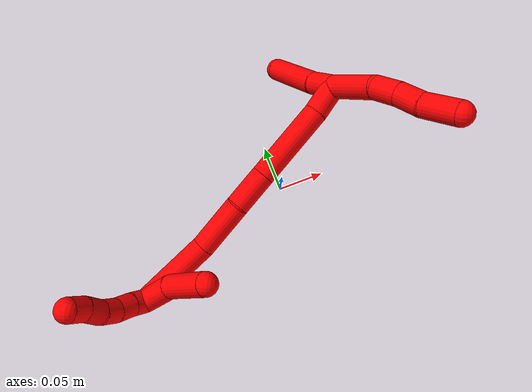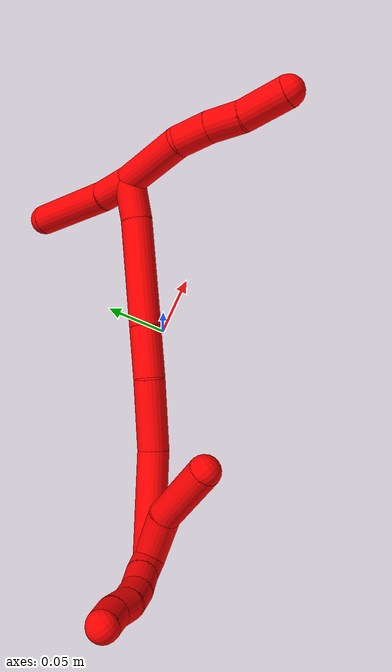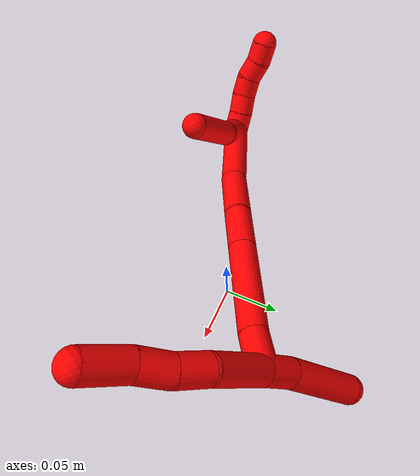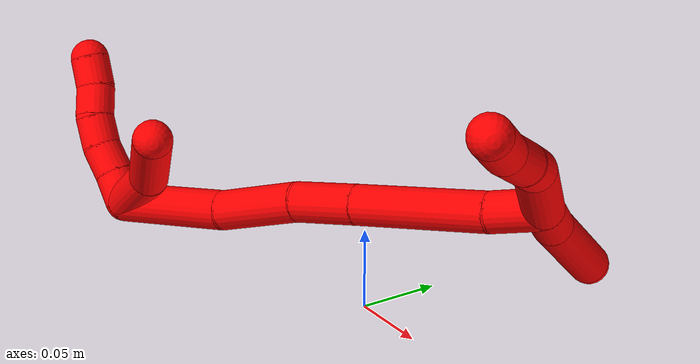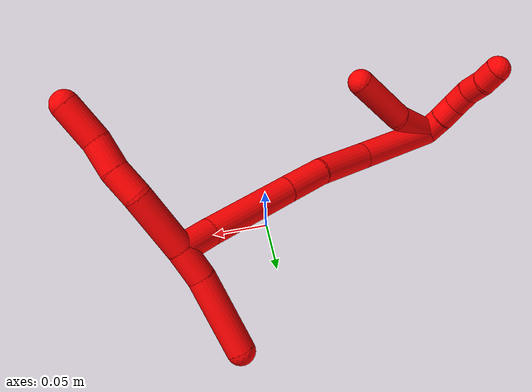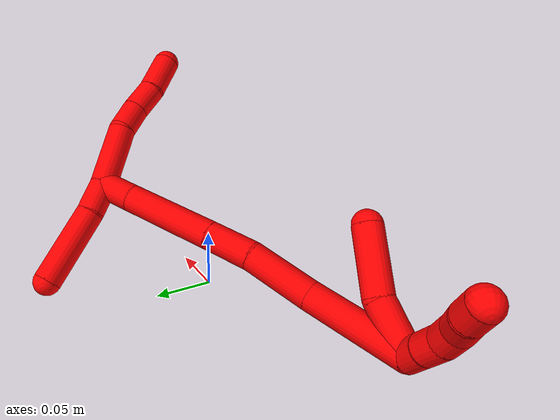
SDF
<sdf version="1.7">
 <world name="default">
  <model name="2">
   <static>0</static>
   <link name="2">
    <collision name="collision-cylinder-e_1_2_8">
     <pose>-0.016965 0.006654 0.021828 -0.295906 -0.639267 0.098581</pose>
     <geometry><cylinder><radius>0.0125</radius><length>0.05687</length></cylinder></geometry>
     <surface>
      <friction><ode><mu>1.16</mu><mu2>1.16</mu2><slip1>0</slip1><slip2>0</slip2></ode></friction>
      <contact><ode><kp>1e+06</kp><kd>1</kd><max_vel>0</max_vel><min_depth>0.001</min_depth></ode></contact>
     </surface>
    </collision>
    <visual name="visual-cylinder-e_1_2_8">
     <pose>-0.016965 0.006654 0.021828 -0.295906 -0.639267 0.098581</pose>
     <geometry><cylinder><radius>0.0125</radius><length>0.05687</length></cylinder></geometry>
     <material><ambient>1 0 0 1</ambient></material>
    </visual>
    <collision name="collision-cylinder-e_2_8_9">
     <pose>-0.040726 0.012899 0.055475 0.034658 -0.521661 -0.009252</pose>
     <geometry><cylinder><radius>0.0125</radius><length>0.02728</length></cylinder></geometry>
     <surface>
      <friction><ode><mu>1.16</mu><mu2>1.16</mu2><slip1>0</slip1><slip2>0</slip2></ode></friction>
      <contact><ode><kp>1e+06</kp><kd>1</kd><max_vel>0</max_vel><min_depth>0.001</min_depth></ode></contact>
     </surface>
    </collision>
    <visual name="visual-cylinder-e_2_8_9">
     <pose>-0.040726 0.012899 0.055475 0.034658 -0.521661 -0.009252</pose>
     <geometry><cylinder><radius>0.0125</radius><length>0.02728</length></cylinder></geometry>
     <material><ambient>1 0 0 1</ambient></material>
    </visual>
    <collision name="collision-cylinder-e_3_9_10">
     <pose>-0.05645 0.011136 0.078158 0.123935 -0.684039 -0.044172</pose>
     <geometry><cylinder><radius>0.0125</radius><length>0.028253</length></cylinder></geometry>
     <surface>
      <friction><ode><mu>1.16</mu><mu2>1.16</mu2><slip1>0</slip1><slip2>0</slip2></ode></friction>
      <contact><ode><kp>1e+06</kp><kd>1</kd><max_vel>0</max_vel><min_depth>0.001</min_depth></ode></contact>
     </surface>
    </collision>
    <visual name="visual-cylinder-e_3_9_10">
     <pose>-0.05645 0.011136 0.078158 0.123935 -0.684039 -0.044172</pose>
     <geometry><cylinder><radius>0.0125</radius><length>0.028253</length></cylinder></geometry>
     <material><ambient>1 0 0 1</ambient></material>
    </visual>
    <collision name="collision-cylinder-e_4_10_6">
     <pose>-0.075394 0.010668 0.104906 -0.055662 -0.561935 0.016068</pose>
     <geometry><cylinder><radius>0.0125</radius><length>0.037597</length></cylinder></geometry>
     <surface>
      <friction><ode><mu>1.16</mu><mu2>1.16</mu2><slip1>0</slip1><slip2>0</slip2></ode></friction>
      <contact><ode><kp>1e+06</kp><kd>1</kd><max_vel>0</max_vel><min_depth>0.001</min_depth></ode></contact>
     </surface>
    </collision>
    <visual name="visual-cylinder-e_4_10_6">
     <pose>-0.075394 0.010668 0.104906 -0.055662 -0.561935 0.016068</pose>
     <geometry><cylinder><radius>0.0125</radius><length>0.037597</length></cylinder></geometry>
     <material><ambient>1 0 0 1</ambient></material>
    </visual>
    <collision name="collision-cylinder-e_1_2_11">
     <pose>0.009138 -0.001746 -0.011289 2.98811 0.674713 2.70998</pose>
     <geometry><cylinder><radius>0.0125</radius><length>0.029257</length></cylinder></geometry>
     <surface>
      <friction><ode><mu>1.16</mu><mu2>1.16</mu2><slip1>0</slip1><slip2>0</slip2></ode></friction>
      <contact><ode><kp>1e+06</kp><kd>1</kd><max_vel>0</max_vel><min_depth>0.001</min_depth></ode></contact>
     </surface>
    </collision>
    <visual name="visual-cylinder-e_1_2_11">
     <pose>0.009138 -0.001746 -0.011289 2.98811 0.674713 2.70998</pose>
     <geometry><cylinder><radius>0.0125</radius><length>0.029257</length></cylinder></geometry>
     <material><ambient>1 0 0 1</ambient></material>
    </visual>
    <collision name="collision-cylinder-e_2_11_5">
     <pose>0.043389 -0.004758 -0.047456 3.0908 0.789444 3.01979</pose>
     <geometry><cylinder><radius>0.0125</radius><length>0.070743</length></cylinder></geometry>
     <surface>
      <friction><ode><mu>1.16</mu><mu2>1.16</mu2><slip1>0</slip1><slip2>0</slip2></ode></friction>
      <contact><ode><kp>1e+06</kp><kd>1</kd><max_vel>0</max_vel><min_depth>0.001</min_depth></ode></contact>
     </surface>
    </collision>
    <visual name="visual-cylinder-e_2_11_5">
     <pose>0.043389 -0.004758 -0.047456 3.0908 0.789444 3.01979</pose>
     <geometry><cylinder><radius>0.0125</radius><length>0.070743</length></cylinder></geometry>
     <material><ambient>1 0 0 1</ambient></material>
    </visual>
    <collision name="collision-cylinder-e_1_2_12">
     <pose>-0.007679 -0.012219 -0.007585 2.12633 -0.49042 -0.845506</pose>
     <geometry><cylinder><radius>0.0125</radius><length>0.032607</length></cylinder></geometry>
     <surface>
      <friction><ode><mu>1.16</mu><mu2>1.16</mu2><slip1>0</slip1><slip2>0</slip2></ode></friction>
      <contact><ode><kp>1e+06</kp><kd>1</kd><max_vel>0</max_vel><min_depth>0.001</min_depth></ode></contact>
     </surface>
    </collision>
    <visual name="visual-cylinder-e_1_2_12">
     <pose>-0.007679 -0.012219 -0.007585 2.12633 -0.49042 -0.845506</pose>
     <geometry><cylinder><radius>0.0125</radius><length>0.032607</length></cylinder></geometry>
     <material><ambient>1 0 0 1</ambient></material>
    </visual>
    <collision name="collision-cylinder-e_2_12_13">
     <pose>-0.037406 -0.053347 -0.038478 2.24935 -0.535812 -1.04207</pose>
     <geometry><cylinder><radius>0.0125</radius><length>0.086373</length></cylinder></geometry>
     <surface>
      <friction><ode><mu>1.16</mu><mu2>1.16</mu2><slip1>0</slip1><slip2>0</slip2></ode></friction>
      <contact><ode><kp>1e+06</kp><kd>1</kd><max_vel>0</max_vel><min_depth>0.001</min_depth></ode></contact>
     </surface>
    </collision>
    <visual name="visual-cylinder-e_2_12_13">
     <pose>-0.037406 -0.053347 -0.038478 2.24935 -0.535812 -1.04207</pose>
     <geometry><cylinder><radius>0.0125</radius><length>0.086373</length></cylinder></geometry>
     <material><ambient>1 0 0 1</ambient></material>
    </visual>
    <collision name="collision-cylinder-e_3_13_14">
     <pose>-0.06986 -0.096192 -0.072984 2.24768 -0.527067 -1.02541</pose>
     <geometry><cylinder><radius>0.0125</radius><length>0.041371</length></cylinder></geometry>
     <surface>
      <friction><ode><mu>1.16</mu><mu2>1.16</mu2><slip1>0</slip1><slip2>0</slip2></ode></friction>
      <contact><ode><kp>1e+06</kp><kd>1</kd><max_vel>0</max_vel><min_depth>0.001</min_depth></ode></contact>
     </surface>
    </collision>
    <visual name="visual-cylinder-e_3_13_14">
     <pose>-0.06986 -0.096192 -0.072984 2.24768 -0.527067 -1.02541</pose>
     <geometry><cylinder><radius>0.0125</radius><length>0.041371</length></cylinder></geometry>
     <material><ambient>1 0 0 1</ambient></material>
    </visual>
    <collision name="collision-cylinder-e_4_14_15">
     <pose>-0.090529 -0.130983 -0.100053 2.22129 -0.373304 -0.728086</pose>
     <geometry><cylinder><radius>0.0125</radius><length>0.056291</length></cylinder></geometry>
     <surface>
      <friction><ode><mu>1.16</mu><mu2>1.16</mu2><slip1>0</slip1><slip2>0</slip2></ode></friction>
      <contact><ode><kp>1e+06</kp><kd>1</kd><max_vel>0</max_vel><min_depth>0.001</min_depth></ode></contact>
     </surface>
    </collision>
    <visual name="visual-cylinder-e_4_14_15">
     <pose>-0.090529 -0.130983 -0.100053 2.22129 -0.373304 -0.728086</pose>
     <geometry><cylinder><radius>0.0125</radius><length>0.056291</length></cylinder></geometry>
     <material><ambient>1 0 0 1</ambient></material>
    </visual>
    <collision name="collision-cylinder-e_5_15_1">
     <pose>-0.119508 -0.177815 -0.142609 2.36966 -0.465664 -1.0565</pose>
     <geometry><cylinder><radius>0.0125</radius><length>0.083358</length></cylinder></geometry>
     <surface>
      <friction><ode><mu>1.16</mu><mu2>1.16</mu2><slip1>0</slip1><slip2>0</slip2></ode></friction>
      <contact><ode><kp>1e+06</kp><kd>1</kd><max_vel>0</max_vel><min_depth>0.001</min_depth></ode></contact>
     </surface>
    </collision>
    <visual name="visual-cylinder-e_5_15_1">
     <pose>-0.119508 -0.177815 -0.142609 2.36966 -0.465664 -1.0565</pose>
     <geometry><cylinder><radius>0.0125</radius><length>0.083358</length></cylinder></geometry>
     <material><ambient>1 0 0 1</ambient></material>
    </visual>
    <collision name="collision-cylinder-e_1_1_16">
     <pose>-0.141366 -0.189537 -0.153377 -0.730325 -0.146063 0.055926</pose>
     <geometry><cylinder><radius>0.0125</radius><length>0.043193</length></cylinder></geometry>
     <surface>
      <friction><ode><mu>1.16</mu><mu2>1.16</mu2><slip1>0</slip1><slip2>0</slip2></ode></friction>
      <contact><ode><kp>1e+06</kp><kd>1</kd><max_vel>0</max_vel><min_depth>0.001</min_depth></ode></contact>
     </surface>
    </collision>
    <visual name="visual-cylinder-e_1_1_16">
     <pose>-0.141366 -0.189537 -0.153377 -0.730325 -0.146063 0.055926</pose>
     <geometry><cylinder><radius>0.0125</radius><length>0.043193</length></cylinder></geometry>
     <material><ambient>1 0 0 1</ambient></material>
    </visual>
    <collision name="collision-cylinder-e_2_16_4">
     <pose>-0.155718 -0.16196 -0.115019 -0.535794 -0.405681 0.112791</pose>
     <geometry><cylinder><radius>0.0125</radius><length>0.056807</length></cylinder></geometry>
     <surface>
      <friction><ode><mu>1.16</mu><mu2>1.16</mu2><slip1>0</slip1><slip2>0</slip2></ode></friction>
      <contact><ode><kp>1e+06</kp><kd>1</kd><max_vel>0</max_vel><min_depth>0.001</min_depth></ode></contact>
     </surface>
    </collision>
    <visual name="visual-cylinder-e_2_16_4">
     <pose>-0.155718 -0.16196 -0.115019 -0.535794 -0.405681 0.112791</pose>
     <geometry><cylinder><radius>0.0125</radius><length>0.056807</length></cylinder></geometry>
     <material><ambient>1 0 0 1</ambient></material>
    </visual>
    <collision name="collision-cylinder-e_1_1_17">
     <pose>-0.14662 -0.200657 -0.173727 -2.52609 -0.996852 2.08445</pose>
     <geometry><cylinder><radius>0.0125</radius><length>0.02</length></cylinder></geometry>
     <surface>
      <friction><ode><mu>1.16</mu><mu2>1.16</mu2><slip1>0</slip1><slip2>0</slip2></ode></friction>
      <contact><ode><kp>1e+06</kp><kd>1</kd><max_vel>0</max_vel><min_depth>0.001</min_depth></ode></contact>
     </surface>
    </collision>
    <visual name="visual-cylinder-e_1_1_17">
     <pose>-0.14662 -0.200657 -0.173727 -2.52609 -0.996852 2.08445</pose>
     <geometry><cylinder><radius>0.0125</radius><length>0.02</length></cylinder></geometry>
     <material><ambient>1 0 0 1</ambient></material>
    </visual>
    <collision name="collision-cylinder-e_2_17_18">
     <pose>-0.163829 -0.195002 -0.182161 -2.57953 -1.07829 2.24248</pose>
     <geometry><cylinder><radius>0.0125</radius><length>0.02</length></cylinder></geometry>
     <surface>
      <friction><ode><mu>1.16</mu><mu2>1.16</mu2><slip1>0</slip1><slip2>0</slip2></ode></friction>
      <contact><ode><kp>1e+06</kp><kd>1</kd><max_vel>0</max_vel><min_depth>0.001</min_depth></ode></contact>
     </surface>
    </collision>
    <visual name="visual-cylinder-e_2_17_18">
     <pose>-0.163829 -0.195002 -0.182161 -2.57953 -1.07829 2.24248</pose>
     <geometry><cylinder><radius>0.0125</radius><length>0.02</length></cylinder></geometry>
     <material><ambient>1 0 0 1</ambient></material>
    </visual>
    <collision name="collision-cylinder-e_3_18_19">
     <pose>-0.180787 -0.187925 -0.189751 -2.23786 -0.952056 1.63115</pose>
     <geometry><cylinder><radius>0.0125</radius><length>0.02</length></cylinder></geometry>
     <surface>
      <friction><ode><mu>1.16</mu><mu2>1.16</mu2><slip1>0</slip1><slip2>0</slip2></ode></friction>
      <contact><ode><kp>1e+06</kp><kd>1</kd><max_vel>0</max_vel><min_depth>0.001</min_depth></ode></contact>
     </surface>
    </collision>
    <visual name="visual-cylinder-e_3_18_19">
     <pose>-0.180787 -0.187925 -0.189751 -2.23786 -0.952056 1.63115</pose>
     <geometry><cylinder><radius>0.0125</radius><length>0.02</length></cylinder></geometry>
     <material><ambient>1 0 0 1</ambient></material>
    </visual>
    <collision name="collision-cylinder-e_4_19_20">
     <pose>-0.195276 -0.177116 -0.197887 -2.19963 -0.687046 1.22478</pose>
     <geometry><cylinder><radius>0.0125</radius><length>0.02</length></cylinder></geometry>
     <surface>
      <friction><ode><mu>1.16</mu><mu2>1.16</mu2><slip1>0</slip1><slip2>0</slip2></ode></friction>
      <contact><ode><kp>1e+06</kp><kd>1</kd><max_vel>0</max_vel><min_depth>0.001</min_depth></ode></contact>
     </surface>
    </collision>
    <visual name="visual-cylinder-e_4_19_20">
     <pose>-0.195276 -0.177116 -0.197887 -2.19963 -0.687046 1.22478</pose>
     <geometry><cylinder><radius>0.0125</radius><length>0.02</length></cylinder></geometry>
     <material><ambient>1 0 0 1</ambient></material>
    </visual>
    <collision name="collision-cylinder-e_5_20_3">
     <pose>-0.209574 -0.166028 -0.206084 -2.21739 -0.919978 1.5655</pose>
     <geometry><cylinder><radius>0.0125</radius><length>0.02</length></cylinder></geometry>
     <surface>
      <friction><ode><mu>1.16</mu><mu2>1.16</mu2><slip1>0</slip1><slip2>0</slip2></ode></friction>
      <contact><ode><kp>1e+06</kp><kd>1</kd><max_vel>0</max_vel><min_depth>0.001</min_depth></ode></contact>
     </surface>
    </collision>
    <visual name="visual-cylinder-e_5_20_3">
     <pose>-0.209574 -0.166028 -0.206084 -2.21739 -0.919978 1.5655</pose>
     <geometry><cylinder><radius>0.0125</radius><length>0.02</length></cylinder></geometry>
     <material><ambient>1 0 0 1</ambient></material>
    </visual>
    <collision name="collision-sphere-3">
     <pose>-0.21753 -0.161193 -0.209734 0 -0 0</pose>
     <geometry><sphere><radius>0.0125</radius></sphere></geometry>
     <surface>
      <friction><ode><mu>1.16</mu><mu2>1.16</mu2><slip1>0</slip1><slip2>0</slip2></ode></friction>
      <contact><ode><kp>1e+06</kp><kd>1</kd><max_vel>0</max_vel><min_depth>0.001</min_depth></ode></contact>
     </surface>
    </collision>
    <visual name="visual-sphere-3">
     <pose>-0.21753 -0.161193 -0.209734 0 -0 0</pose>
     <geometry><sphere><radius>0.0125</radius></sphere></geometry>
     <material><ambient>1 0 0 1</ambient></material>
    </visual>
    <collision name="collision-sphere-20">
     <pose>-0.201618 -0.170864 -0.202434 0 -0 0</pose>
     <geometry><sphere><radius>0.0125</radius></sphere></geometry>
     <surface>
      <friction><ode><mu>1.16</mu><mu2>1.16</mu2><slip1>0</slip1><slip2>0</slip2></ode></friction>
      <contact><ode><kp>1e+06</kp><kd>1</kd><max_vel>0</max_vel><min_depth>0.001</min_depth></ode></contact>
     </surface>
    </collision>
    <visual name="visual-sphere-20">
     <pose>-0.201618 -0.170864 -0.202434 0 -0 0</pose>
     <geometry><sphere><radius>0.0125</radius></sphere></geometry>
     <material><ambient>1 0 0 1</ambient></material>
    </visual>
    <collision name="collision-sphere-19">
     <pose>-0.188933 -0.183369 -0.193339 0 -0 0</pose>
     <geometry><sphere><radius>0.0125</radius></sphere></geometry>
     <surface>
      <friction><ode><mu>1.16</mu><mu2>1.16</mu2><slip1>0</slip1><slip2>0</slip2></ode></friction>
      <contact><ode><kp>1e+06</kp><kd>1</kd><max_vel>0</max_vel><min_depth>0.001</min_depth></ode></contact>
     </surface>
    </collision>
    <visual name="visual-sphere-19">
     <pose>-0.188933 -0.183369 -0.193339 0 -0 0</pose>
     <geometry><sphere><radius>0.0125</radius></sphere></geometry>
     <material><ambient>1 0 0 1</ambient></material>
    </visual>
    <collision name="collision-sphere-11">
     <pose>0.018276 -0.003493 -0.022578 0 -0 0</pose>
     <geometry><sphere><radius>0.0125</radius></sphere></geometry>
     <surface>
      <friction><ode><mu>1.16</mu><mu2>1.16</mu2><slip1>0</slip1><slip2>0</slip2></ode></friction>
      <contact><ode><kp>1e+06</kp><kd>1</kd><max_vel>0</max_vel><min_depth>0.001</min_depth></ode></contact>
     </surface>
    </collision>
    <visual name="visual-sphere-11">
     <pose>0.018276 -0.003493 -0.022578 0 -0 0</pose>
     <geometry><sphere><radius>0.0125</radius></sphere></geometry>
     <material><ambient>1 0 0 1</ambient></material>
    </visual>
    <collision name="collision-sphere-6">
     <pose>-0.08541 0.011553 0.120789 0 -0 0</pose>
     <geometry><sphere><radius>0.0125</radius></sphere></geometry>
     <surface>
      <friction><ode><mu>1.16</mu><mu2>1.16</mu2><slip1>0</slip1><slip2>0</slip2></ode></friction>
      <contact><ode><kp>1e+06</kp><kd>1</kd><max_vel>0</max_vel><min_depth>0.001</min_depth></ode></contact>
     </surface>
    </collision>
    <visual name="visual-sphere-6">
     <pose>-0.08541 0.011553 0.120789 0 -0 0</pose>
     <geometry><sphere><radius>0.0125</radius></sphere></geometry>
     <material><ambient>1 0 0 1</ambient></material>
    </visual>
    <collision name="collision-sphere-10">
     <pose>-0.065377 0.009783 0.089023 0 -0 0</pose>
     <geometry><sphere><radius>0.0125</radius></sphere></geometry>
     <surface>
      <friction><ode><mu>1.16</mu><mu2>1.16</mu2><slip1>0</slip1><slip2>0</slip2></ode></friction>
      <contact><ode><kp>1e+06</kp><kd>1</kd><max_vel>0</max_vel><min_depth>0.001</min_depth></ode></contact>
     </surface>
    </collision>
    <visual name="visual-sphere-10">
     <pose>-0.065377 0.009783 0.089023 0 -0 0</pose>
     <geometry><sphere><radius>0.0125</radius></sphere></geometry>
     <material><ambient>1 0 0 1</ambient></material>
    </visual>
    <collision name="collision-sphere-9">
     <pose>-0.047523 0.012489 0.067294 0 -0 0</pose>
     <geometry><sphere><radius>0.0125</radius></sphere></geometry>
     <surface>
      <friction><ode><mu>1.16</mu><mu2>1.16</mu2><slip1>0</slip1><slip2>0</slip2></ode></friction>
      <contact><ode><kp>1e+06</kp><kd>1</kd><max_vel>0</max_vel><min_depth>0.001</min_depth></ode></contact>
     </surface>
    </collision>
    <visual name="visual-sphere-9">
     <pose>-0.047523 0.012489 0.067294 0 -0 0</pose>
     <geometry><sphere><radius>0.0125</radius></sphere></geometry>
     <material><ambient>1 0 0 1</ambient></material>
    </visual>
    <collision name="collision-sphere-2">
     <geometry><sphere><radius>0.0125</radius></sphere></geometry>
     <surface>
      <friction><ode><mu>1.16</mu><mu2>1.16</mu2><slip1>0</slip1><slip2>0</slip2></ode></friction>
      <contact><ode><kp>1e+06</kp><kd>1</kd><max_vel>0</max_vel><min_depth>0.001</min_depth></ode></contact>
     </surface>
    </collision>
    <visual name="visual-sphere-2">
     <geometry><sphere><radius>0.0125</radius></sphere></geometry>
     <material><ambient>1 0 0 1</ambient></material>
    </visual>
    <collision name="collision-sphere-8">
     <pose>-0.033929 0.013309 0.043657 0 -0 0</pose>
     <geometry><sphere><radius>0.0125</radius></sphere></geometry>
     <surface>
      <friction><ode><mu>1.16</mu><mu2>1.16</mu2><slip1>0</slip1><slip2>0</slip2></ode></friction>
      <contact><ode><kp>1e+06</kp><kd>1</kd><max_vel>0</max_vel><min_depth>0.001</min_depth></ode></contact>
     </surface>
    </collision>
    <visual name="visual-sphere-8">
     <pose>-0.033929 0.013309 0.043657 0 -0 0</pose>
     <geometry><sphere><radius>0.0125</radius></sphere></geometry>
     <material><ambient>1 0 0 1</ambient></material>
    </visual>
    <collision name="collision-sphere-5">
     <pose>0.068501 -0.006022 -0.072334 0 -0 0</pose>
     <geometry><sphere><radius>0.0125</radius></sphere></geometry>
     <surface>
      <friction><ode><mu>1.16</mu><mu2>1.16</mu2><slip1>0</slip1><slip2>0</slip2></ode></friction>
      <contact><ode><kp>1e+06</kp><kd>1</kd><max_vel>0</max_vel><min_depth>0.001</min_depth></ode></contact>
     </surface>
    </collision>
    <visual name="visual-sphere-5">
     <pose>0.068501 -0.006022 -0.072334 0 -0 0</pose>
     <geometry><sphere><radius>0.0125</radius></sphere></geometry>
     <material><ambient>1 0 0 1</ambient></material>
    </visual>
    <collision name="collision-sphere-12">
     <pose>-0.015358 -0.024438 -0.01517 0 -0 0</pose>
     <geometry><sphere><radius>0.0125</radius></sphere></geometry>
     <surface>
      <friction><ode><mu>1.16</mu><mu2>1.16</mu2><slip1>0</slip1><slip2>0</slip2></ode></friction>
      <contact><ode><kp>1e+06</kp><kd>1</kd><max_vel>0</max_vel><min_depth>0.001</min_depth></ode></contact>
     </surface>
    </collision>
    <visual name="visual-sphere-12">
     <pose>-0.015358 -0.024438 -0.01517 0 -0 0</pose>
     <geometry><sphere><radius>0.0125</radius></sphere></geometry>
     <material><ambient>1 0 0 1</ambient></material>
    </visual>
    <collision name="collision-sphere-13">
     <pose>-0.059455 -0.082255 -0.061786 0 -0 0</pose>
     <geometry><sphere><radius>0.0125</radius></sphere></geometry>
     <surface>
      <friction><ode><mu>1.16</mu><mu2>1.16</mu2><slip1>0</slip1><slip2>0</slip2></ode></friction>
      <contact><ode><kp>1e+06</kp><kd>1</kd><max_vel>0</max_vel><min_depth>0.001</min_depth></ode></contact>
     </surface>
    </collision>
    <visual name="visual-sphere-13">
     <pose>-0.059455 -0.082255 -0.061786 0 -0 0</pose>
     <geometry><sphere><radius>0.0125</radius></sphere></geometry>
     <material><ambient>1 0 0 1</ambient></material>
    </visual>
    <collision name="collision-sphere-14">
     <pose>-0.080265 -0.110128 -0.084182 0 -0 0</pose>
     <geometry><sphere><radius>0.0125</radius></sphere></geometry>
     <surface>
      <friction><ode><mu>1.16</mu><mu2>1.16</mu2><slip1>0</slip1><slip2>0</slip2></ode></friction>
      <contact><ode><kp>1e+06</kp><kd>1</kd><max_vel>0</max_vel><min_depth>0.001</min_depth></ode></contact>
     </surface>
    </collision>
    <visual name="visual-sphere-14">
     <pose>-0.080265 -0.110128 -0.084182 0 -0 0</pose>
     <geometry><sphere><radius>0.0125</radius></sphere></geometry>
     <material><ambient>1 0 0 1</ambient></material>
    </visual>
    <collision name="collision-sphere-15">
     <pose>-0.100793 -0.151838 -0.115923 0 -0 0</pose>
     <geometry><sphere><radius>0.0125</radius></sphere></geometry>
     <surface>
      <friction><ode><mu>1.16</mu><mu2>1.16</mu2><slip1>0</slip1><slip2>0</slip2></ode></friction>
      <contact><ode><kp>1e+06</kp><kd>1</kd><max_vel>0</max_vel><min_depth>0.001</min_depth></ode></contact>
     </surface>
    </collision>
    <visual name="visual-sphere-15">
     <pose>-0.100793 -0.151838 -0.115923 0 -0 0</pose>
     <geometry><sphere><radius>0.0125</radius></sphere></geometry>
     <material><ambient>1 0 0 1</ambient></material>
    </visual>
    <collision name="collision-sphere-1">
     <pose>-0.138222 -0.203791 -0.169294 0 -0 0</pose>
     <geometry><sphere><radius>0.0125</radius></sphere></geometry>
     <surface>
      <friction><ode><mu>1.16</mu><mu2>1.16</mu2><slip1>0</slip1><slip2>0</slip2></ode></friction>
      <contact><ode><kp>1e+06</kp><kd>1</kd><max_vel>0</max_vel><min_depth>0.001</min_depth></ode></contact>
     </surface>
    </collision>
    <visual name="visual-sphere-1">
     <pose>-0.138222 -0.203791 -0.169294 0 -0 0</pose>
     <geometry><sphere><radius>0.0125</radius></sphere></geometry>
     <material><ambient>1 0 0 1</ambient></material>
    </visual>
    <collision name="collision-sphere-18">
     <pose>-0.172641 -0.192482 -0.186162 0 -0 0</pose>
     <geometry><sphere><radius>0.0125</radius></sphere></geometry>
     <surface>
      <friction><ode><mu>1.16</mu><mu2>1.16</mu2><slip1>0</slip1><slip2>0</slip2></ode></friction>
      <contact><ode><kp>1e+06</kp><kd>1</kd><max_vel>0</max_vel><min_depth>0.001</min_depth></ode></contact>
     </surface>
    </collision>
    <visual name="visual-sphere-18">
     <pose>-0.172641 -0.192482 -0.186162 0 -0 0</pose>
     <geometry><sphere><radius>0.0125</radius></sphere></geometry>
     <material><ambient>1 0 0 1</ambient></material>
    </visual>
    <collision name="collision-sphere-16">
     <pose>-0.144509 -0.175284 -0.13746 0 -0 0</pose>
     <geometry><sphere><radius>0.0125</radius></sphere></geometry>
     <surface>
      <friction><ode><mu>1.16</mu><mu2>1.16</mu2><slip1>0</slip1><slip2>0</slip2></ode></friction>
      <contact><ode><kp>1e+06</kp><kd>1</kd><max_vel>0</max_vel><min_depth>0.001</min_depth></ode></contact>
     </surface>
    </collision>
    <visual name="visual-sphere-16">
     <pose>-0.144509 -0.175284 -0.13746 0 -0 0</pose>
     <geometry><sphere><radius>0.0125</radius></sphere></geometry>
     <material><ambient>1 0 0 1</ambient></material>
    </visual>
    <collision name="collision-sphere-4">
     <pose>-0.166927 -0.148636 -0.092578 0 -0 0</pose>
     <geometry><sphere><radius>0.0125</radius></sphere></geometry>
     <surface>
      <friction><ode><mu>1.16</mu><mu2>1.16</mu2><slip1>0</slip1><slip2>0</slip2></ode></friction>
      <contact><ode><kp>1e+06</kp><kd>1</kd><max_vel>0</max_vel><min_depth>0.001</min_depth></ode></contact>
     </surface>
    </collision>
    <visual name="visual-sphere-4">
     <pose>-0.166927 -0.148636 -0.092578 0 -0 0</pose>
     <geometry><sphere><radius>0.0125</radius></sphere></geometry>
     <material><ambient>1 0 0 1</ambient></material>
    </visual>
    <collision name="collision-sphere-17">
     <pose>-0.155018 -0.197522 -0.17816 0 -0 0</pose>
     <geometry><sphere><radius>0.0125</radius></sphere></geometry>
     <surface>
      <friction><ode><mu>1.16</mu><mu2>1.16</mu2><slip1>0</slip1><slip2>0</slip2></ode></friction>
      <contact><ode><kp>1e+06</kp><kd>1</kd><max_vel>0</max_vel><min_depth>0.001</min_depth></ode></contact>
     </surface>
    </collision>
    <visual name="visual-sphere-17">
     <pose>-0.155018 -0.197522 -0.17816 0 -0 0</pose>
     <geometry><sphere><radius>0.0125</radius></sphere></geometry>
     <material><ambient>1 0 0 1</ambient></material>
    </visual>
    <inertial>
     <pose>-0.076628 -0.088059 -0.068055 0 -0 0</pose>
     <mass>0.75</mass>
     <inertia>
      <ixx>-2.3e-05</ixx>
      <ixy>0</ixy>
      <ixz>0</ixz>
      <iyy>-1.5e-05</iyy>
      <iyz>0</iyz>
      <izz>0.000135</izz>
     </inertia>
    </inertial>
   </link>
   <pose>0.082308 0.066366 0.078186 1.33611 0.824807 0.886671</pose>
  </model>
 </world>
</sdf>
